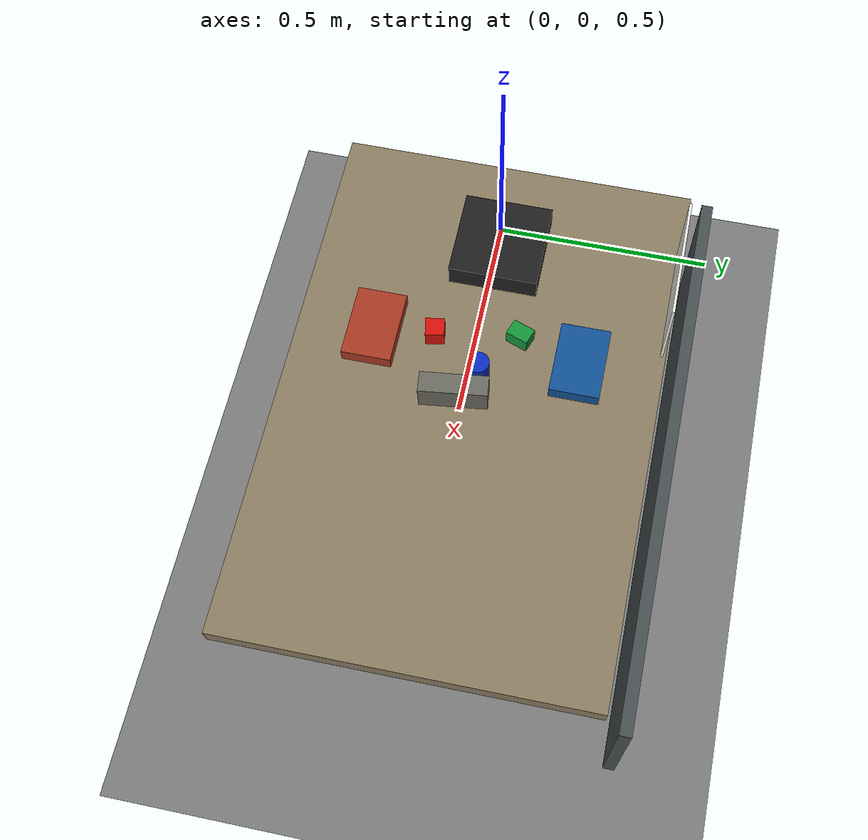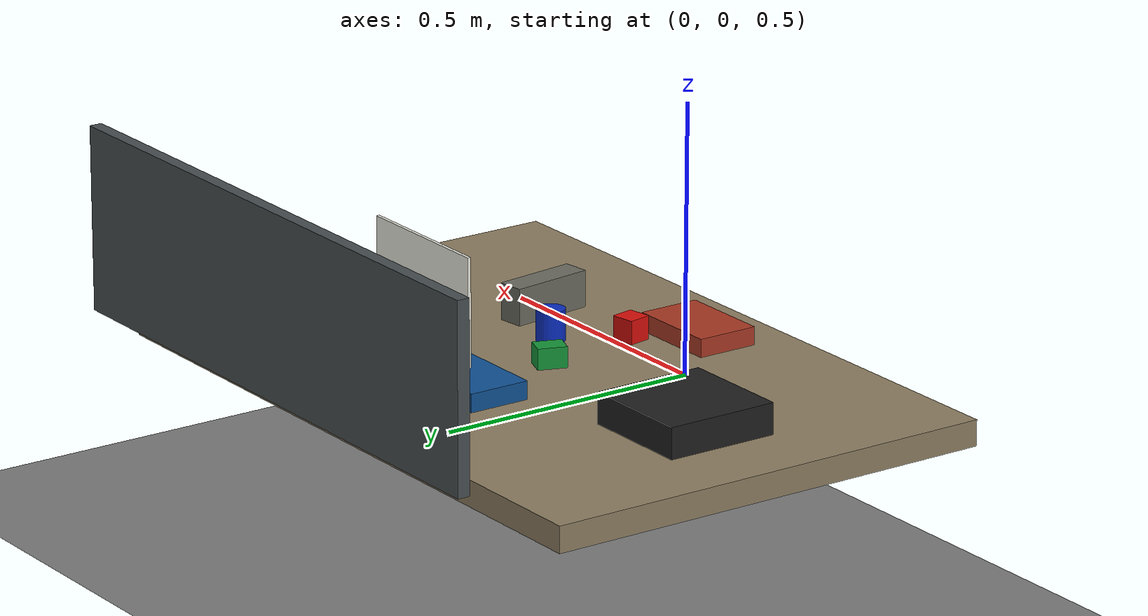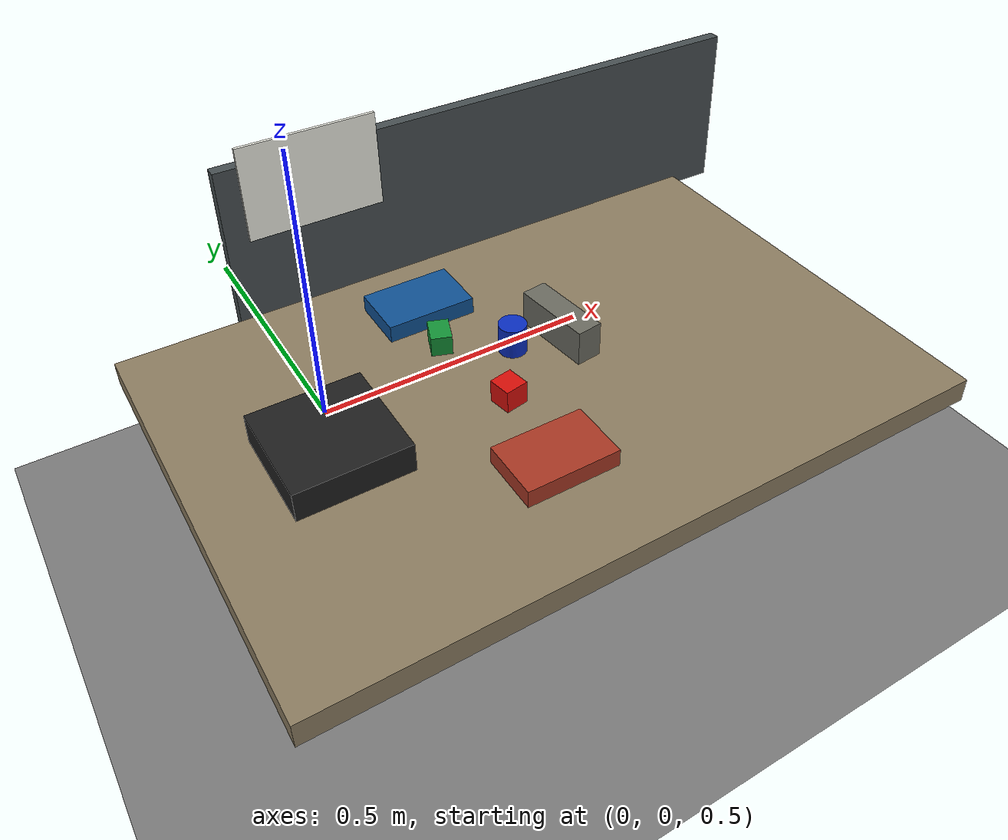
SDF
<?xml version="1.0" ?>
<sdf version="1.9">
  <world name="so101_picking_table">
    <physics name="1ms" type="ignored">
      <max_step_size>0.001</max_step_size>
      <real_time_factor>1.0</real_time_factor>
    </physics>
    <plugin filename="gz-sim-physics-system" name="gz::sim::systems::Physics"/>
    <plugin filename="gz-sim-user-commands-system" name="gz::sim::systems::UserCommands"/>
    <plugin filename="gz-sim-scene-broadcaster-system" name="gz::sim::systems::SceneBroadcaster"/>
    <plugin filename="gz-sim-sensors-system" name="gz::sim::systems::Sensors">
      <render_engine>ogre2</render_engine>
    </plugin>

    <light type="directional" name="key_light">
      <pose>-1.2 -0.8 3.2 0 0 0</pose>
      <diffuse>0.9 0.86 0.78 1</diffuse>
      <specular>0.25 0.25 0.22 1</specular>
      <direction>0.45 0.3 -1</direction>
    </light>
    <light type="point" name="bench_fill_light">
      <pose>0.2 0.8 1.5 0 0 0</pose>
      <diffuse>0.35 0.38 0.42 1</diffuse>
      <specular>0.05 0.05 0.05 1</specular>
      <attenuation>
        <range>3.0</range>
        <constant>0.6</constant>
        <linear>0.2</linear>
        <quadratic>0.02</quadratic>
      </attenuation>
    </light>

    <model name="ground_plane">
      <static>true</static>
      <link name="link">
        <collision name="collision">
          <geometry><plane><normal>0 0 1</normal><size>5 5</size></plane></geometry>
        </collision>
        <visual name="visual">
          <geometry><plane><normal>0 0 1</normal><size>5 5</size></plane></geometry>
          <material><ambient>0.38 0.38 0.38 1</ambient><diffuse>0.48 0.48 0.48 1</diffuse></material>
        </visual>
      </link>
    </model>

    <model name="workbench">
      <static>true</static>
      <pose>0.42 0 0.375 0 0 0</pose>
      <link name="tabletop">
        <collision name="collision"><geometry><box><size>1.35 0.9 0.05</size></box></geometry></collision>
        <visual name="visual">
          <geometry><box><size>1.35 0.9 0.05</size></box></geometry>
          <material><ambient>0.42 0.37 0.29 1</ambient><diffuse>0.55 0.49 0.38 1</diffuse><specular>0.08 0.07 0.05 1</specular></material>
        </visual>
      </link>
      <link name="rear_panel">
        <pose>0.18 0.47 0.18 0 0 0</pose>
        <collision name="collision"><geometry><box><size>1.2 0.025 0.36</size></box></geometry></collision>
        <visual name="visual">
          <geometry><box><size>1.2 0.025 0.36</size></box></geometry>
          <material><ambient>0.22 0.24 0.25 1</ambient><diffuse>0.28 0.31 0.32 1</diffuse></material>
        </visual>
      </link>
    </model>

    <model name="arm_base_mount">
      <static>true</static>
      <pose>0 0 0.43 0 0 0</pose>
      <link name="link">
        <collision name="collision"><geometry><box><size>0.22 0.22 0.06</size></box></geometry></collision>
        <visual name="visual">
          <geometry><box><size>0.22 0.22 0.06</size></box></geometry>
          <material><ambient>0.08 0.08 0.08 1</ambient><diffuse>0.12 0.12 0.12 1</diffuse></material>
        </visual>
      </link>
    </model>

    <model name="left_bin">
      <static>true</static>
      <pose>0.30 0.25 0.45 0 0 0</pose>
      <link name="link">
        <collision name="base"><geometry><box><size>0.18 0.12 0.035</size></box></geometry></collision>
        <visual name="base_visual"><geometry><box><size>0.18 0.12 0.035</size></box></geometry><material><ambient>0.04 0.19 0.35 1</ambient><diffuse>0.06 0.32 0.58 1</diffuse></material></visual>
      </link>
    </model>

    <model name="right_bin">
      <static>true</static>
      <pose>0.30 -0.25 0.45 0 0 0</pose>
      <link name="link">
        <collision name="base"><geometry><box><size>0.18 0.12 0.035</size></box></geometry></collision>
        <visual name="base_visual"><geometry><box><size>0.18 0.12 0.035</size></box></geometry><material><ambient>0.36 0.12 0.08 1</ambient><diffuse>0.66 0.22 0.14 1</diffuse></material></visual>
      </link>
    </model>

    <model name="red_block_target">
      <pose>0.30 -0.10 0.4825 0 0 0.18</pose>
      <link name="link">
        <inertial><mass>0.045</mass><inertia><ixx>0.00002</ixx><iyy>0.00002</iyy><izz>0.00002</izz></inertia></inertial>
        <collision name="collision"><geometry><box><size>0.045 0.045 0.045</size></box></geometry></collision>
        <visual name="visual"><geometry><box><size>0.045 0.045 0.045</size></box></geometry><material><ambient>0.45 0.03 0.02 1</ambient><diffuse>0.85 0.06 0.04 1</diffuse></material></visual>
      </link>
    </model>

    <model name="blue_cylinder_distractor">
      <pose>0.38 0.02 0.49 0 0 0</pose>
      <link name="link">
        <inertial><mass>0.035</mass><inertia><ixx>0.000015</ixx><iyy>0.000015</iyy><izz>0.00001</izz></inertia></inertial>
        <collision name="collision"><geometry><cylinder><radius>0.027</radius><length>0.06</length></cylinder></geometry></collision>
        <visual name="visual"><geometry><cylinder><radius>0.027</radius><length>0.06</length></cylinder></geometry><material><ambient>0.02 0.09 0.38 1</ambient><diffuse>0.04 0.18 0.76 1</diffuse></material></visual>
      </link>
    </model>

    <model name="green_block_distractor">
      <pose>0.27 0.10 0.48 0 0 -0.35</pose>
      <link name="link">
        <inertial><mass>0.04</mass><inertia><ixx>0.000018</ixx><iyy>0.000018</iyy><izz>0.000018</izz></inertia></inertial>
        <collision name="collision"><geometry><box><size>0.04 0.055 0.04</size></box></geometry></collision>
        <visual name="visual"><geometry><box><size>0.04 0.055 0.04</size></box></geometry><material><ambient>0.04 0.32 0.12 1</ambient><diffuse>0.08 0.58 0.22 1</diffuse></material></visual>
      </link>
    </model>

    <model name="occluder_box">
      <static>true</static>
      <pose>0.46 -0.02 0.515 0 0 0.12</pose>
      <link name="link">
        <collision name="collision"><geometry><box><size>0.05 0.16 0.07</size></box></geometry></collision>
        <visual name="visual"><geometry><box><size>0.05 0.16 0.07</size></box></geometry><material><ambient>0.22 0.22 0.2 1</ambient><diffuse>0.42 0.42 0.38 1</diffuse></material></visual>
      </link>
    </model>

    <model name="calibration_board">
      <static>true</static>
      <pose>0.18 0.43 0.69 1.5708 0 0</pose>
      <link name="link">
        <collision name="collision"><geometry><box><size>0.28 0.20 0.006</size></box></geometry></collision>
        <visual name="visual"><geometry><box><size>0.28 0.20 0.006</size></box></geometry><material><ambient>0.86 0.86 0.82 1</ambient><diffuse>0.94 0.94 0.9 1</diffuse></material></visual>
      </link>
    </model>
  </world>
</sdf>
